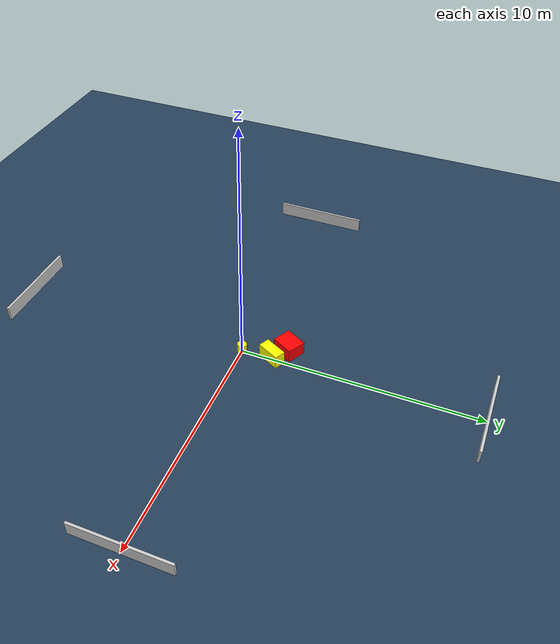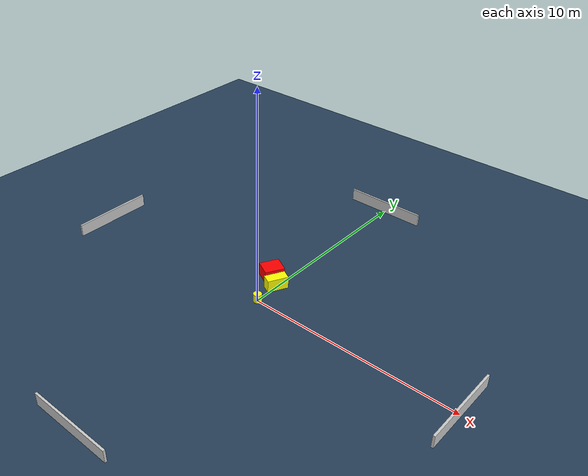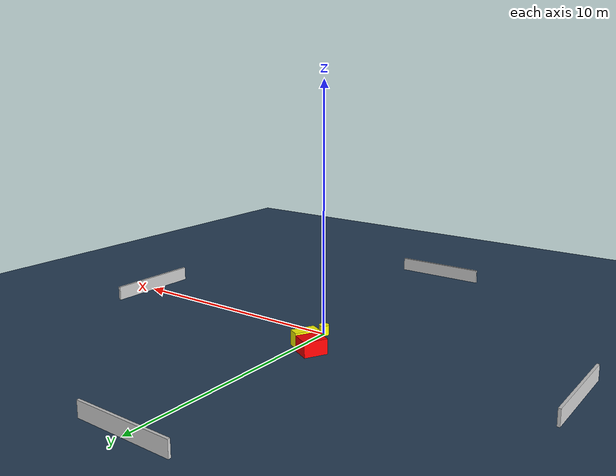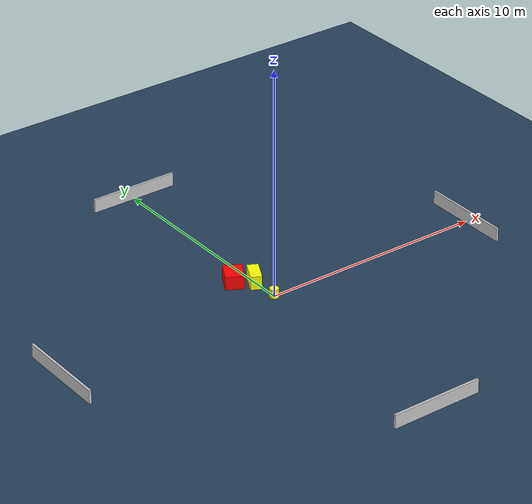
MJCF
<?xml version="1.0" ?>
<mujoco model="generated_environment">
  <option timestep="0.01" integrator="RK4" cone="elliptic"/>
  <default>
    <geom density="1"/>
  </default>
  <asset>
    <texture builtin="gradient" height="3072" name="skybox" rgb1="0.3 0.5 0.7" rgb2="0 0 0" type="skybox" width="512"/>
    <texture builtin="checker" height="300" name="groundplane" rgb1="0.2 0.3 0.4" rgb2="0.1 0.2 0.3" type="2d" width="300"/>
    <material name="groundplane" reflectance="0.2" texrepeat="5 5" texture="groundplane"/>
  </asset>
  <worldbody>
    <light dir="0 0 -1" directional="true" pos="0 0 1.5"/>
    <geom condim="3" friction="0.5 0.005 0.001" material="groundplane" name="floor" pos="0 0 0" size="0 0 0.05" type="plane"/>
    <body name="walls">
      <geom name="wall_1" condim="4" pos="-10.0 0.0 0.3" rgba="0.800000011920929 0.800000011920929 0.800000011920929 1.0" size="0.05 2.0 0.3" type="box"/>
      <geom name="wall_2" condim="4" pos="10.0 0.0 0.3" rgba="0.800000011920929 0.800000011920929 0.800000011920929 1.0" size="0.05 2.0 0.3" type="box"/>
      <geom name="wall_3" condim="4" pos="0.0 -10.0 0.3" rgba="0.800000011920929 0.800000011920929 0.800000011920929 1.0" size="2.0 0.05 0.3" type="box"/>
      <geom name="wall_4" condim="4" pos="0.0 10.0 0.3" rgba="0.800000011920929 0.800000011920929 0.800000011920929 1.0" size="2.0 0.05 0.3" type="box"/>
    </body>
    <body name="robot">
      <joint name="joint_x" type="slide" pos="0 0 0" axis="1 0 0"/>
      <joint name="joint_y" type="slide" pos="0 0 0" axis="0 1 0"/>
      <geom name="robot" type="cylinder" pos="0.0 0.0 0.2" size="0.2 0.2 0.0" mass="5.0" friction="1.0 0.005 0.0001" condim="4" rgba="1.0 1.0 0.0 1.0"/>
    </body>
    <body name="obstacle_1_movable">
      <geom name="obstacle_1_movable" condim="4" pos="-0.031008530848111164 1.2942823565920478 0.3" euler="0 0 62.96009947877625" friction="0.0 0.005 0.001" rgba="1.0 1.0 0.0 1.0" size="0.4980544396815891 0.24002187603050473 0.3" type="box" mass="0.1"/>
      <joint type="free"/>
    </body>
    <body name="obstacle_2_static">
      <geom name="obstacle_2_static" condim="4" pos="-0.7061528208269578 1.78151178897828 0.3" euler="0 0 61.70162776886827" friction="0.0 0.005 0.001" rgba="1.0 0.0 0.0 1.0" size="0.4742998603014737 0.4019061909900259 0.3" type="box"/>
    </body>
  </worldbody>
  <actuator>
    <motor name="actuator_x" joint="joint_x" gear="1" ctrlrange="-1 1"/>
    <motor name="actuator_y" joint="joint_y" gear="1" ctrlrange="-1 1"/>
  </actuator>
</mujoco>
